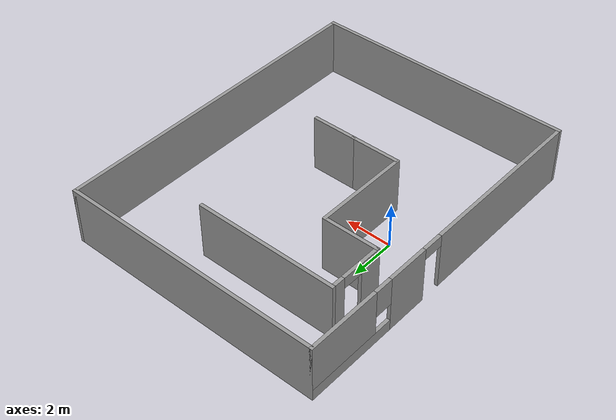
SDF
<?xml version='1.0'?>
<sdf version='1.7'>
  <model name='room'>
    <pose>3.14337 0.065252 0 0 -0 0</pose>
    <link name='Wall_10'>
      <collision name='Wall_10_Collision'>
        <geometry>
          <box>
            <size>11.5 0.15 2.5</size>
          </box>
        </geometry>
        <pose>0 0 1.25 0 -0 0</pose>
      </collision>
      <visual name='Wall_10_Visual'>
        <pose>0 0 1.25 0 -0 0</pose>
        <geometry>
          <box>
            <size>11.5 0.15 2.5</size>
          </box>
        </geometry>
        <material>
          <script>
            <uri>file://media/materials/scripts/gazebo.material</uri>
            <name>Gazebo/Grey</name>
          </script>
          <ambient>1 1 1 1</ambient>
        </material>
        <meta>
          <layer>0</layer>
        </meta>
      </visual>
      <pose>-0 -7.175 0 0 -0 3.14159</pose>
    </link>
    <link name='Wall_12'>
      <collision name='Wall_12_Collision'>
        <geometry>
          <box>
            <size>6.25 0.15 2.5</size>
          </box>
        </geometry>
        <pose>0 0 1.25 0 -0 0</pose>
      </collision>
      <visual name='Wall_12_Visual'>
        <pose>0 0 1.25 0 -0 0</pose>
        <geometry>
          <box>
            <size>6.25 0.15 2.5</size>
          </box>
        </geometry>
        <material>
          <script>
            <uri>file://media/materials/scripts/gazebo.material</uri>
            <name>Gazebo/Grey</name>
          </script>
          <ambient>1 1 1 1</ambient>
        </material>
        <meta>
          <layer>0</layer>
        </meta>
      </visual>
      <pose>-1.39294 4.74294 0 0 -0 3.14159</pose>
    </link>
    <link name='Wall_13'>
      <pose>-4.44294 3.56794 0 0 -0 -1.5708</pose>
      <visual name='Wall_13_Visual_0'>
        <pose>-0.939033 0 1.25 0 -0 0</pose>
        <geometry>
          <box>
            <size>0.621934 0.15 2.5</size>
          </box>
        </geometry>
        <material>
          <script>
            <uri>file://media/materials/scripts/gazebo.material</uri>
            <name>Gazebo/Grey</name>
          </script>
          <ambient>1 1 1 1</ambient>
        </material>
        <meta>
          <layer>0</layer>
        </meta>
      </visual>
      <collision name='Wall_13_Collision_0'>
        <geometry>
          <box>
            <size>0.621934 0.15 2.5</size>
          </box>
        </geometry>
        <pose>-0.939033 0 1.25 0 -0 0</pose>
      </collision>
      <visual name='Wall_13_Visual_1'>
        <pose>0.760967 0 1.25 0 -0 0</pose>
        <geometry>
          <box>
            <size>0.978066 0.15 2.5</size>
          </box>
        </geometry>
        <material>
          <script>
            <uri>file://media/materials/scripts/gazebo.material</uri>
            <name>Gazebo/Grey</name>
          </script>
          <ambient>1 1 1 1</ambient>
        </material>
        <meta>
          <layer>0</layer>
        </meta>
      </visual>
      <collision name='Wall_13_Collision_1'>
        <geometry>
          <box>
            <size>0.978066 0.15 2.5</size>
          </box>
        </geometry>
        <pose>0.760967 0 1.25 0 -0 0</pose>
      </collision>
      <visual name='Wall_13_Visual_2'>
        <pose>-0.178066 0 2.25 0 -0 0</pose>
        <geometry>
          <box>
            <size>0.9 0.15 0.5</size>
          </box>
        </geometry>
        <material>
          <script>
            <uri>file://media/materials/scripts/gazebo.material</uri>
            <name>Gazebo/Grey</name>
          </script>
          <ambient>1 1 1 1</ambient>
        </material>
        <meta>
          <layer>0</layer>
        </meta>
      </visual>
      <collision name='Wall_13_Collision_2'>
        <geometry>
          <box>
            <size>0.9 0.15 0.5</size>
          </box>
        </geometry>
        <pose>-0.178066 0 2.25 0 -0 0</pose>
      </collision>
    </link>
    <link name='Wall_14'>
      <collision name='Wall_14_Collision'>
        <geometry>
          <box>
            <size>2.5 0.15 2.5</size>
          </box>
        </geometry>
        <pose>0 0 1.25 0 -0 0</pose>
      </collision>
      <visual name='Wall_14_Visual'>
        <pose>0 0 1.25 0 -0 0</pose>
        <geometry>
          <box>
            <size>2.5 0.15 2.5</size>
          </box>
        </geometry>
        <material>
          <script>
            <uri>file://media/materials/scripts/gazebo.material</uri>
            <name>Gazebo/Grey</name>
          </script>
          <ambient>1 1 1 1</ambient>
        </material>
        <meta>
          <layer>0</layer>
        </meta>
      </visual>
      <pose>-3.26794 2.39294 0 0 -0 0</pose>
    </link>
    <link name='Wall_15'>
      <collision name='Wall_15_Collision'>
        <geometry>
          <box>
            <size>4.25 0.15 2.5</size>
          </box>
        </geometry>
        <pose>0 0 1.25 0 -0 0</pose>
      </collision>
      <visual name='Wall_15_Visual'>
        <pose>0 0 1.25 0 -0 0</pose>
        <geometry>
          <box>
            <size>4.25 0.15 2.5</size>
          </box>
        </geometry>
        <material>
          <script>
            <uri>file://media/materials/scripts/gazebo.material</uri>
            <name>Gazebo/Grey</name>
          </script>
          <ambient>1 1 1 1</ambient>
        </material>
        <meta>
          <layer>0</layer>
        </meta>
      </visual>
      <pose>-2.09294 0.342936 0 0 -0 -1.5708</pose>
    </link>
    <link name='Wall_16'>
      <collision name='Wall_16_Collision'>
        <geometry>
          <box>
            <size>2.25 0.15 2.5</size>
          </box>
        </geometry>
        <pose>0 0 1.25 0 -0 0</pose>
      </collision>
      <visual name='Wall_16_Visual'>
        <pose>0 0 1.25 0 -0 0</pose>
        <geometry>
          <box>
            <size>2.25 0.15 2.5</size>
          </box>
        </geometry>
        <material>
          <script>
            <uri>file://media/materials/scripts/gazebo.material</uri>
            <name>Gazebo/Grey</name>
          </script>
          <ambient>1 1 1 1</ambient>
        </material>
        <meta>
          <layer>0</layer>
        </meta>
      </visual>
      <pose>-1.04293 -1.70706 0 0 -0 0</pose>
    </link>
    <link name='Wall_18'>
      <collision name='Wall_18_Collision'>
        <geometry>
          <box>
            <size>2 0.15 2.5</size>
          </box>
        </geometry>
        <pose>0 0 1.25 0 -0 0</pose>
      </collision>
      <visual name='Wall_18_Visual'>
        <pose>0 0 1.25 0 -0 0</pose>
        <geometry>
          <box>
            <size>2 0.15 2.5</size>
          </box>
        </geometry>
        <material>
          <script>
            <uri>file://media/materials/scripts/gazebo.material</uri>
            <name>Gazebo/Grey</name>
          </script>
          <ambient>1 1 1 1</ambient>
        </material>
        <meta>
          <layer>0</layer>
        </meta>
      </visual>
      <pose>0.932065 -1.70706 0 0 -0 0</pose>
    </link>
    <link name='Wall_7'>
      <pose>-5.675 0 0 0 -0 1.5708</pose>
      <visual name='Wall_7_Visual_0'>
        <pose>-3.40244 0 1.25 0 -0 0</pose>
        <geometry>
          <box>
            <size>7.69512 0.15 2.5</size>
          </box>
        </geometry>
        <material>
          <script>
            <uri>file://media/materials/scripts/gazebo.material</uri>
            <name>Gazebo/Grey</name>
          </script>
          <ambient>1 1 1 1</ambient>
        </material>
        <meta>
          <layer>0</layer>
        </meta>
      </visual>
      <collision name='Wall_7_Collision_0'>
        <geometry>
          <box>
            <size>7.69512 0.15 2.5</size>
          </box>
        </geometry>
        <pose>-3.40244 0 1.25 0 -0 0</pose>
      </collision>
      <visual name='Wall_7_Visual_1'>
        <pose>2.2756 0 1.25 0 -0 0</pose>
        <geometry>
          <box>
            <size>1.86096 0.15 2.5</size>
          </box>
        </geometry>
        <material>
          <script>
            <uri>file://media/materials/scripts/gazebo.material</uri>
            <name>Gazebo/Grey</name>
          </script>
          <ambient>1 1 1 1</ambient>
        </material>
        <meta>
          <layer>0</layer>
        </meta>
      </visual>
      <collision name='Wall_7_Collision_1'>
        <geometry>
          <box>
            <size>1.86096 0.15 2.5</size>
          </box>
        </geometry>
        <pose>2.2756 0 1.25 0 -0 0</pose>
      </collision>
      <visual name='Wall_7_Visual_2'>
        <pose>5.22804 0 0.25 0 -0 0</pose>
        <geometry>
          <box>
            <size>4.04392 0.15 0.5</size>
          </box>
        </geometry>
        <material>
          <script>
            <uri>file://media/materials/scripts/gazebo.material</uri>
            <name>Gazebo/Grey</name>
          </script>
          <ambient>1 1 1 1</ambient>
        </material>
        <meta>
          <layer>0</layer>
        </meta>
      </visual>
      <collision name='Wall_7_Collision_2'>
        <geometry>
          <box>
            <size>4.04392 0.15 0.5</size>
          </box>
        </geometry>
        <pose>5.22804 0 0.25 0 -0 0</pose>
      </collision>
      <visual name='Wall_7_Visual_3'>
        <pose>5.62804 0 1.5 0 -0 0</pose>
        <geometry>
          <box>
            <size>3.24392 0.15 2</size>
          </box>
        </geometry>
        <material>
          <script>
            <uri>file://media/materials/scripts/gazebo.material</uri>
            <name>Gazebo/Grey</name>
          </script>
          <ambient>1 1 1 1</ambient>
        </material>
        <meta>
          <layer>0</layer>
        </meta>
      </visual>
      <collision name='Wall_7_Collision_3'>
        <geometry>
          <box>
            <size>3.24392 0.15 2</size>
          </box>
        </geometry>
        <pose>5.62804 0 1.5 0 -0 0</pose>
      </collision>
      <visual name='Wall_7_Visual_4'>
        <pose>3.60608 0 1.9 0 -0 0</pose>
        <geometry>
          <box>
            <size>0.8 0.15 1.2</size>
          </box>
        </geometry>
        <material>
          <script>
            <uri>file://media/materials/scripts/gazebo.material</uri>
            <name>Gazebo/Grey</name>
          </script>
          <ambient>1 1 1 1</ambient>
        </material>
        <meta>
          <layer>0</layer>
        </meta>
      </visual>
      <collision name='Wall_7_Collision_4'>
        <geometry>
          <box>
            <size>0.8 0.15 1.2</size>
          </box>
        </geometry>
        <pose>3.60608 0 1.9 0 -0 0</pose>
      </collision>
      <visual name='Wall_7_Visual_5'>
        <pose>0.895122 0 2.25 0 -0 0</pose>
        <geometry>
          <box>
            <size>0.9 0.15 0.5</size>
          </box>
        </geometry>
        <material>
          <script>
            <uri>file://media/materials/scripts/gazebo.material</uri>
            <name>Gazebo/Grey</name>
          </script>
          <ambient>1 1 1 1</ambient>
        </material>
        <meta>
          <layer>0</layer>
        </meta>
      </visual>
      <collision name='Wall_7_Collision_5'>
        <geometry>
          <box>
            <size>0.9 0.15 0.5</size>
          </box>
        </geometry>
        <pose>0.895122 0 2.25 0 -0 0</pose>
      </collision>
    </link>
    <link name='Wall_8'>
      <collision name='Wall_8_Collision'>
        <geometry>
          <box>
            <size>11.5 0.15 2.5</size>
          </box>
        </geometry>
        <pose>0 0 1.25 0 -0 0</pose>
      </collision>
      <visual name='Wall_8_Visual'>
        <pose>0 0 1.25 0 -0 0</pose>
        <geometry>
          <box>
            <size>11.5 0.15 2.5</size>
          </box>
        </geometry>
        <material>
          <script>
            <uri>file://media/materials/scripts/gazebo.material</uri>
            <name>Gazebo/Grey</name>
          </script>
          <ambient>1 1 1 1</ambient>
        </material>
        <meta>
          <layer>0</layer>
        </meta>
      </visual>
      <pose>-0 7.175 0 0 -0 0</pose>
    </link>
    <link name='Wall_9'>
      <collision name='Wall_9_Collision'>
        <geometry>
          <box>
            <size>14.5 0.15 2.5</size>
          </box>
        </geometry>
        <pose>0 0 1.25 0 -0 0</pose>
      </collision>
      <visual name='Wall_9_Visual'>
        <pose>0 0 1.25 0 -0 0</pose>
        <geometry>
          <box>
            <size>14.5 0.15 2.5</size>
          </box>
        </geometry>
        <material>
          <script>
            <uri>file://media/materials/scripts/gazebo.material</uri>
            <name>Gazebo/Grey</name>
          </script>
          <ambient>1 1 1 1</ambient>
        </material>
        <meta>
          <layer>0</layer>
        </meta>
      </visual>
      <pose>5.675 0 0 0 -0 -1.5708</pose>
    </link>
    <static>1</static>
  </model>
</sdf>
